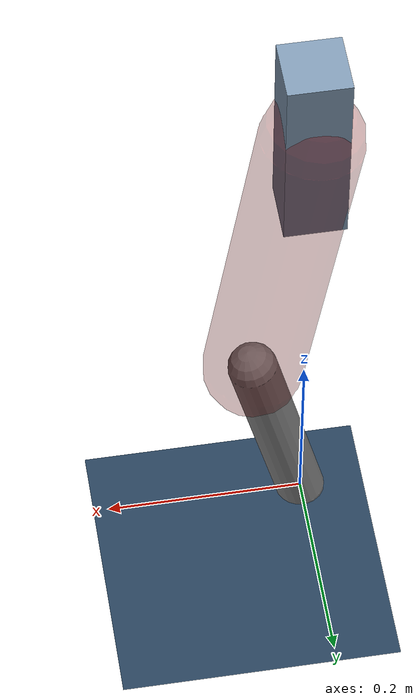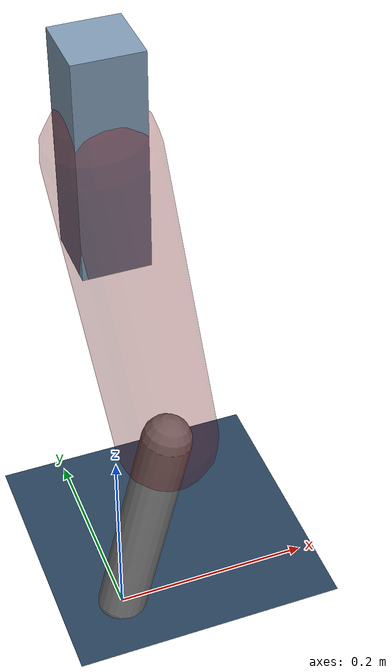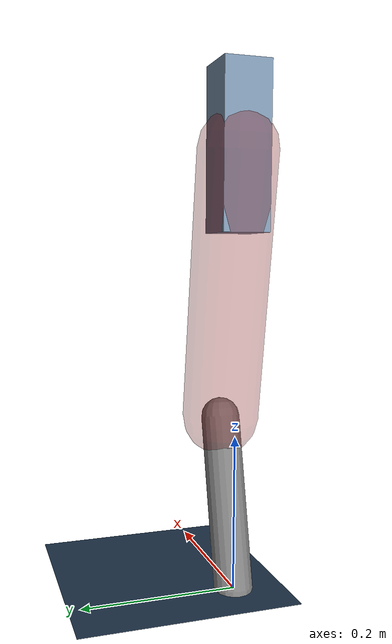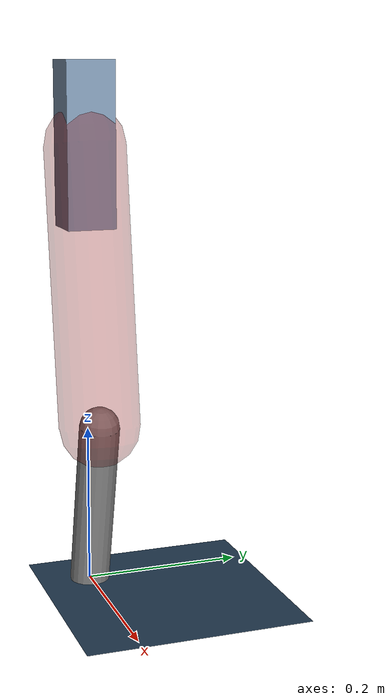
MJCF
<mujoco model="Hopper2D">
	<compiler inertiafromgeom="true" angle="radian" />
	<option timestep="0.001" integrator="implicit" cone="elliptic" solver="Newton" tolerance="1e-10" />

	<default>
		<geom contype="1" conaffinity="1" condim="3" friction="2 0.005 0.0001" solref="0.005 1" />
		<joint limited="true" damping="0.1" />
	</default>

	<asset>
		<texture name="skybox" type="skybox" builtin="gradient" rgb1=".4 .6 .8" rgb2="0 0 0" width="800" height="800" />
		<texture name="grid" type="2d" builtin="checker" rgb1=".1 .2 .3" rgb2=".2 .3 .4" width="300" height="300" mark="edge" markrgb=".2 .3 .4" />
		<material name="ground" texture="grid" texrepeat="1 1" texuniform="true" reflectance="0.1" />
		<material name="leg" rgba="0.5 0.6 0.7 1" />
	</asset>

	<worldbody>

		<geom name="floor" type="plane" size="5 5 0.25" material="ground" />

		<light directional="false" diffuse="0.8 0.8 0.8" specular="0.3 0.3 0.3" pos="0 0 2" dir="0 0 -1" />
		<light mode="targetbodycom" target="base" directional="false" diffuse="0.8 0.8 0.8" specular="0.3 0.3 0.3" pos="0 0 2" dir="0 0 -1" />

		<camera name="fixed" pos="0 -2 1" xyaxes="1 0 0 0 0 1" />
		<camera name="tracking" mode="trackcom" pos="0 -3 1" />

		<body name="root" pos="0 0 0.5552448598955138">
			<joint name="slide_x" type="slide" axis="1 0 0" range="-100 100" />
			<joint name="slide_z" type="slide" axis="0 0 1" range="0 10" />

			<body name="base" pos="0 0 0">
				<geom name="torso" type="box" size="0.03 0.03 0.1" mass="2.739" material="leg" />

				<body name="link1" pos="0 0 0" euler="0 1.4194702830172374 0">
					<joint type="hinge" axis="0 -1 0" pos="0 0 0" name="hinge1" limited="true" range="-3.14 3.14" stiffness="0" damping="0.1" />
					<geom name="thigh" type="capsule" fromto="0 0 0 0.3427556827721093 0 0" size="0.05" rgba="0.5 0 0 0.3" mass="1.1063159117619061" />

					<body name="link2" pos="0.3427556827721093 0 0" euler="0 0.385702563688532 0">
						<joint type="hinge" axis="0 -1 0" pos="0 0 0" name="hinge2" limited="true" range="-3.14 3.14" stiffness="0" damping="0.1" />
						<geom name="shank" type="capsule" fromto="0 0 0 0.22248917712340438 0 0" size="0.025" mass="0.41974025941106397" />

					</body>
				</body>
			</body>
		</body>
	</worldbody>

	<actuator>
		<motor name="torque1" joint="hinge1" ctrlrange="-90.10787441590013 90.10787441590013" ctrllimited="true" gear="1" />
		<motor name="torque2" joint="hinge2" ctrlrange="-43.324393143598826 43.324393143598826" ctrllimited="true" gear="1" />
	</actuator>
</mujoco>
